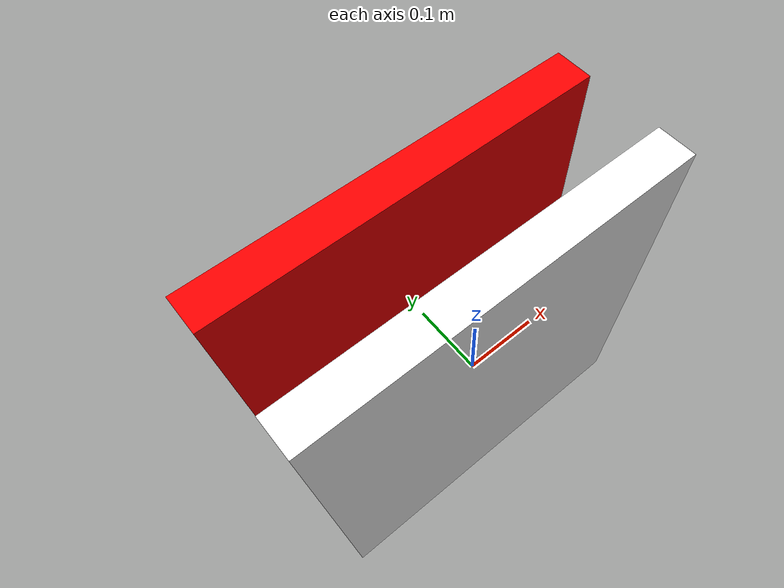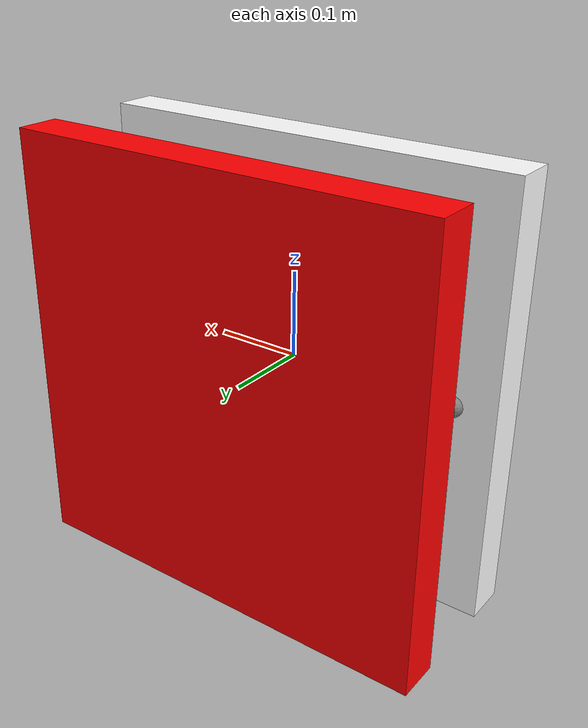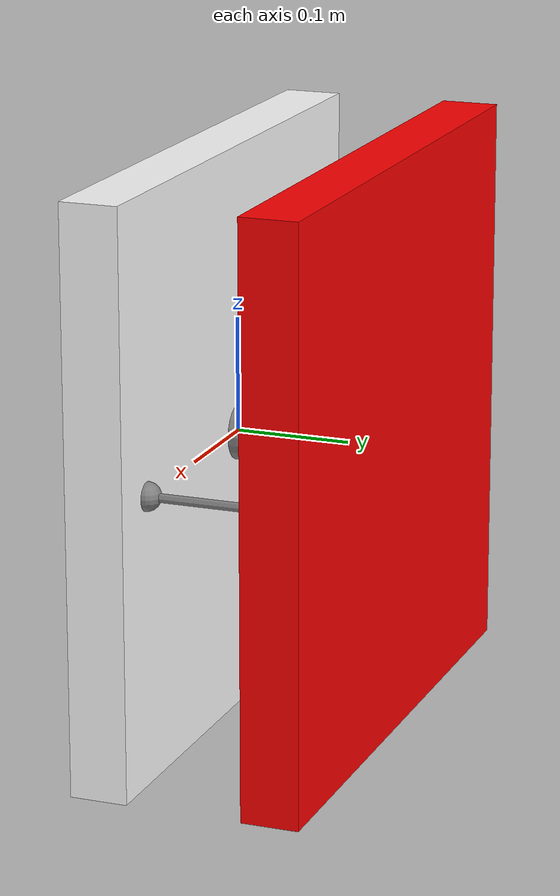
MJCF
<mujoco model="muscle">

  <visual>
    <map force="0.1" zfar="30" />
    <rgba haze="0 0 0 1" />
    <global offwidth="1920" offheight="1080" elevation="-90" azimuth="0" />
    <quality shadowsize="2048" />
    <headlight ambient="0.3 0.3 0.3" diffuse="0.8 0.8 0.8" specular="0.4 0.4 0.4" />
  </visual>

  <default>
    <muscle ctrllimited="true" ctrlrange="0 1" />
  </default>

  <worldbody>
    <body name="passive_plate" pos="0 -.025 0">
      <site name="soleus_site1" pos="0 .025 0" size="0.025" />
      <site name="lambda_static_site1" pos=".2 .025 0" size="0.0125" />
      <site name="lambda_dynamic_site1" pos="-.2 .025 0" size="0.0125" />
      <site name="dummy_site1" pos="-.2 .025 0" size="0.001" />
      <geom type="box" size=".25 .025 0.25" density="300" rgba="1 1 1 1" />

      <body name="active_plate" pos="0 .15 0">
        <site name="soleus_site2" pos="0 -.025 0" size="0.025" />
        <site name="lambda_static_site2" pos=".2 -.025 0" size="0.0125" />
        <site name="lambda_dynamic_site2" pos="-.2 -.025 0" size="0.0125" />
        <site name="dummy_site2" pos="-.2 -.025 0" size="0.001" />
        <geom type="box" size=".25 .025 0.25" density="300" rgba="1 0 0 1" />
        <joint name="stretcher_joint" pos="0 .4 0" type="slide" axis="0 1 0" damping="0" />
      </body>
    </body>

  </worldbody>

  <tendon>
    <spatial name="extrafusal" limited="true" range=".1 .5" width="0.008">
      <site site="soleus_site1" />
      <site site="soleus_site2" />
    </spatial>

    <spatial name="dummy_tendon" limited="true" range=".1 .5" width="0.008">
      <site site="dummy_site1" />
      <site site="dummy_site2" />
    </spatial>

    <spatial name="intrafusal_static" limited="true" range="0 1.5" width="0.004">
      <site site="lambda_static_site1" />
      <site site="lambda_static_site2" />
    </spatial>

    <spatial name="intrafusal_dynamic" limited="true" range="0 1.5" width="0.004">
      <site site="lambda_dynamic_site1" />
      <site site="lambda_dynamic_site2" />
    </spatial>
  </tendon>

  <actuator>
    <velocity name="stretcher" joint="stretcher_joint" kv="1000" ctrlrange="-1 1" />
    <muscle name="alpha" tendon="extrafusal" force="0" timeconst=".01 .04" ctrlrange="0 1" />
    <muscle name="gamma_static" tendon="intrafusal_static" force="0" timeconst=".01 .04" ctrlrange="0 1" />
    <muscle name="gamma_dynamic" tendon="intrafusal_dynamic" force="0" timeconst=".01 .04" ctrlrange="0 1" />
    <muscle name="soleus" tendon="extrafusal" force="10" timeconst=".01 .04" ctrlrange="0 1" />
  </actuator>

  <sensor>
    <actuatorpos name="soleus_length" actuator="soleus" />
    <actuatorvel name="soleus_velocity" actuator="soleus" />
    <actuatorfrc name="soleus_force" actuator="soleus" />
  </sensor>

</mujoco>
